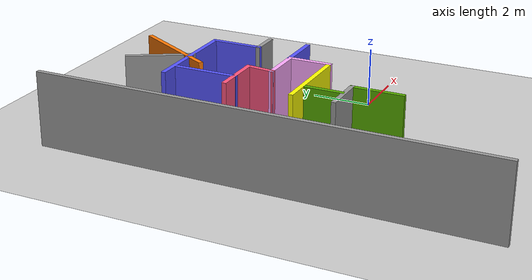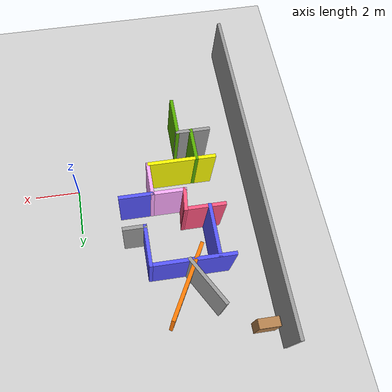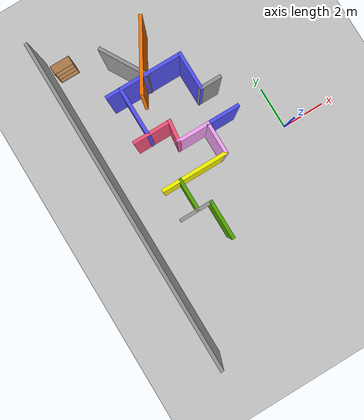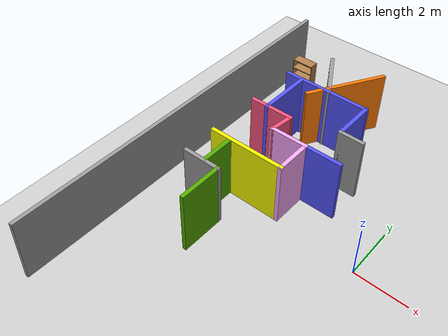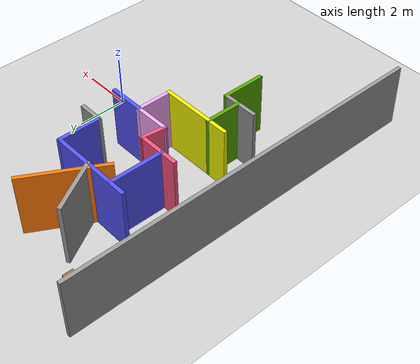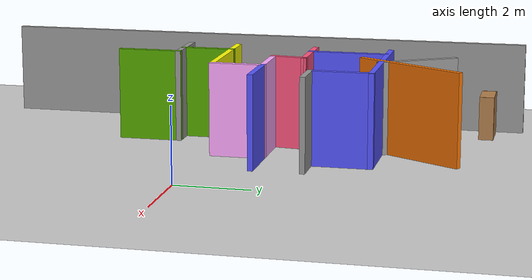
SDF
<sdf version="1.6">
 <world name="default">
  <model name="ground_plane">
   <static>1</static>
   <link name="link">
    <collision name="collision">
     <geometry><plane><normal>0 0 1</normal><size>100 100</size></plane></geometry>
     <surface><friction><ode><mu>100</mu><mu2>50</mu2></ode></friction></surface>
    </collision>
    <visual name="visual">
     <cast_shadows>0</cast_shadows>
     <geometry><plane><normal>0 0 1</normal><size>100 100</size></plane></geometry>
     <material>
      <script><uri>file://media/materials/scripts/gazebo.material</uri><name>Gazebo/Grey</name></script>
     </material>
    </visual>
   </link>
  </model>
  <model name="try_example">
   <link name="Wall_1">
    <pose>-5.97854 0.156676 0 0 -0 1.5708</pose>
    <visual name="Wall_1_Visual">
     <pose>0 0 1.25 0 -0 0</pose>
     <geometry><box><size>14.9191 0.15 2.5</size></box></geometry>
     <material>
      <script><uri>file://media/materials/scripts/gazebo.material</uri><name>Gazebo/Grey</name></script>
      <ambient>0 0 0 1</ambient>
      <diffuse>0.7 0.7 0.7 1</diffuse>
      <specular>0.01 0.01 0.01 1</specular>
      <emissive>0 0 0 1</emissive>
     </material>
    </visual>
    <collision name="Wall_1_Collision">
     <pose>0 0 1.25 0 -0 0</pose>
     <geometry><box><size>14.9191 0.15 2.5</size></box></geometry>
     <surface>
      <friction>
       <ode><mu>1</mu><mu2>1</mu2><fdir1>0 0 0</fdir1><slip1>0</slip1><slip2>0</slip2></ode>
       <torsional>
        <coefficient>1</coefficient>
        <patch_radius>0</patch_radius>
        <surface_radius>0</surface_radius>
        <use_patch_radius>1</use_patch_radius>
        <ode><slip>0</slip></ode>
       </torsional>
      </friction>
      <bounce><restitution_coefficient>0</restitution_coefficient><threshold>1e+06</threshold></bounce>
      <contact>
       <collide_without_contact>0</collide_without_contact>
       <collide_without_contact_bitmask>1</collide_without_contact_bitmask>
       <collide_bitmask>1</collide_bitmask>
       <ode>
        <soft_cfm>0</soft_cfm>
        <soft_erp>0.2</soft_erp>
        <kp>1e+13</kp>
        <kd>1</kd>
        <max_vel>0.01</max_vel>
        <min_depth>0</min_depth>
       </ode>
       <bullet>
        <split_impulse>1</split_impulse>
        <split_impulse_penetration_threshold>-0.01</split_impulse_penetration_threshold>
        <soft_cfm>0</soft_cfm>
        <soft_erp>0.2</soft_erp>
        <kp>1e+13</kp>
        <kd>1</kd>
       </bullet>
      </contact>
     </surface>
    </collision>
   </link>
   <link name="Wall_26">
    <pose>-2.96058 -2.37202 0 0 -0 1.5708</pose>
    <visual name="Wall_26_Visual">
     <pose>0 0 1.25 0 -0 0</pose>
     <geometry><box><size>1.75 0.15 2.5</size></box></geometry>
     <material>
      <script><uri>file://media/materials/scripts/gazebo.material</uri><name>Gazebo/Grey</name></script>
      <ambient>0.333333 0.666667 0 1</ambient>
      <diffuse>0.7 0.7 0.7 1</diffuse>
      <specular>0.01 0.01 0.01 1</specular>
      <emissive>0 0 0 1</emissive>
     </material>
    </visual>
    <collision name="Wall_26_Collision">
     <pose>0 0 1.25 0 -0 0</pose>
     <geometry><box><size>1.75 0.15 2.5</size></box></geometry>
     <surface>
      <friction>
       <ode><mu>1</mu><mu2>1</mu2><fdir1>0 0 0</fdir1><slip1>0</slip1><slip2>0</slip2></ode>
       <torsional>
        <coefficient>1</coefficient>
        <patch_radius>0</patch_radius>
        <surface_radius>0</surface_radius>
        <use_patch_radius>1</use_patch_radius>
        <ode><slip>0</slip></ode>
       </torsional>
      </friction>
      <bounce><restitution_coefficient>0</restitution_coefficient><threshold>1e+06</threshold></bounce>
      <contact>
       <collide_without_contact>0</collide_without_contact>
       <collide_without_contact_bitmask>1</collide_without_contact_bitmask>
       <collide_bitmask>1</collide_bitmask>
       <ode>
        <soft_cfm>0</soft_cfm>
        <soft_erp>0.2</soft_erp>
        <kp>1e+13</kp>
        <kd>1</kd>
        <max_vel>0.01</max_vel>
        <min_depth>0</min_depth>
       </ode>
       <bullet>
        <split_impulse>1</split_impulse>
        <split_impulse_penetration_threshold>-0.01</split_impulse_penetration_threshold>
        <soft_cfm>0</soft_cfm>
        <soft_erp>0.2</soft_erp>
        <kp>1e+13</kp>
        <kd>1</kd>
       </bullet>
      </contact>
     </surface>
    </collision>
   </link>
   <link name="Wall_27">
    <pose>-3.63558 -1.57202 0 0 -0 3.14159</pose>
    <visual name="Wall_27_Visual">
     <pose>0 0 1.25 0 -0 0</pose>
     <geometry><box><size>1.5 0.15 2.5</size></box></geometry>
     <material>
      <script><uri>file://media/materials/scripts/gazebo.material</uri><name>Gazebo/Grey</name></script>
      <ambient>1 1 1 1</ambient>
      <diffuse>0.7 0.7 0.7 1</diffuse>
      <specular>0.01 0.01 0.01 1</specular>
      <emissive>0 0 0 1</emissive>
     </material>
    </visual>
    <collision name="Wall_27_Collision">
     <pose>0 0 1.25 0 -0 0</pose>
     <geometry><box><size>1.5 0.15 2.5</size></box></geometry>
     <surface>
      <friction>
       <ode><mu>1</mu><mu2>1</mu2><fdir1>0 0 0</fdir1><slip1>0</slip1><slip2>0</slip2></ode>
       <torsional>
        <coefficient>1</coefficient>
        <patch_radius>0</patch_radius>
        <surface_radius>0</surface_radius>
        <use_patch_radius>1</use_patch_radius>
        <ode><slip>0</slip></ode>
       </torsional>
      </friction>
      <bounce><restitution_coefficient>0</restitution_coefficient><threshold>1e+06</threshold></bounce>
      <contact>
       <collide_without_contact>0</collide_without_contact>
       <collide_without_contact_bitmask>1</collide_without_contact_bitmask>
       <collide_bitmask>1</collide_bitmask>
       <ode>
        <soft_cfm>0</soft_cfm>
        <soft_erp>0.2</soft_erp>
        <kp>1e+13</kp>
        <kd>1</kd>
        <max_vel>0.01</max_vel>
        <min_depth>0</min_depth>
       </ode>
       <bullet>
        <split_impulse>1</split_impulse>
        <split_impulse_penetration_threshold>-0.01</split_impulse_penetration_threshold>
        <soft_cfm>0</soft_cfm>
        <soft_erp>0.2</soft_erp>
        <kp>1e+13</kp>
        <kd>1</kd>
       </bullet>
      </contact>
     </surface>
    </collision>
   </link>
   <link name="Wall_28">
    <pose>-3.55189 -0.897016 0 0 -0 1.5708</pose>
    <visual name="Wall_28_Visual">
     <pose>0 0 1.25 0 -0 0</pose>
     <geometry><box><size>1.5 0.15 2.5</size></box></geometry>
     <material>
      <script><uri>file://media/materials/scripts/gazebo.material</uri><name>Gazebo/Grey</name></script>
      <ambient>0.333333 0.666667 0 1</ambient>
      <diffuse>0.7 0.7 0.7 1</diffuse>
      <specular>0.01 0.01 0.01 1</specular>
      <emissive>0 0 0 1</emissive>
     </material>
    </visual>
    <collision name="Wall_28_Collision">
     <pose>0 0 1.25 0 -0 0</pose>
     <geometry><box><size>1.5 0.15 2.5</size></box></geometry>
     <surface>
      <friction>
       <ode><mu>1</mu><mu2>1</mu2><fdir1>0 0 0</fdir1><slip1>0</slip1><slip2>0</slip2></ode>
       <torsional>
        <coefficient>1</coefficient>
        <patch_radius>0</patch_radius>
        <surface_radius>0</surface_radius>
        <use_patch_radius>1</use_patch_radius>
        <ode><slip>0</slip></ode>
       </torsional>
      </friction>
      <bounce><restitution_coefficient>0</restitution_coefficient><threshold>1e+06</threshold></bounce>
      <contact>
       <collide_without_contact>0</collide_without_contact>
       <collide_without_contact_bitmask>1</collide_without_contact_bitmask>
       <collide_bitmask>1</collide_bitmask>
       <ode>
        <soft_cfm>0</soft_cfm>
        <soft_erp>0.2</soft_erp>
        <kp>1e+13</kp>
        <kd>1</kd>
        <max_vel>0.01</max_vel>
        <min_depth>0</min_depth>
       </ode>
       <bullet>
        <split_impulse>1</split_impulse>
        <split_impulse_penetration_threshold>-0.01</split_impulse_penetration_threshold>
        <soft_cfm>0</soft_cfm>
        <soft_erp>0.2</soft_erp>
        <kp>1e+13</kp>
        <kd>1</kd>
       </bullet>
      </contact>
     </surface>
    </collision>
   </link>
   <link name="Wall_29">
    <pose>-2.88558 -0.222018 0 0 -0 0</pose>
    <visual name="Wall_29_Visual">
     <pose>0 0 1.25 0 -0 0</pose>
     <geometry><box><size>3 0.15 2.5</size></box></geometry>
     <material>
      <script><uri>file://media/materials/scripts/gazebo.material</uri><name>Gazebo/Grey</name></script>
      <ambient>1 1 0 1</ambient>
      <diffuse>0.7 0.7 0.7 1</diffuse>
      <specular>0.01 0.01 0.01 1</specular>
      <emissive>0 0 0 1</emissive>
     </material>
    </visual>
    <collision name="Wall_29_Collision">
     <pose>0 0 1.25 0 -0 0</pose>
     <geometry><box><size>3 0.15 2.5</size></box></geometry>
     <surface>
      <friction>
       <ode><mu>1</mu><mu2>1</mu2><fdir1>0 0 0</fdir1><slip1>0</slip1><slip2>0</slip2></ode>
       <torsional>
        <coefficient>1</coefficient>
        <patch_radius>0</patch_radius>
        <surface_radius>0</surface_radius>
        <use_patch_radius>1</use_patch_radius>
        <ode><slip>0</slip></ode>
       </torsional>
      </friction>
      <bounce><restitution_coefficient>0</restitution_coefficient><threshold>1e+06</threshold></bounce>
      <contact>
       <collide_without_contact>0</collide_without_contact>
       <collide_without_contact_bitmask>1</collide_without_contact_bitmask>
       <collide_bitmask>1</collide_bitmask>
       <ode>
        <soft_cfm>0</soft_cfm>
        <soft_erp>0.2</soft_erp>
        <kp>1e+13</kp>
        <kd>1</kd>
        <max_vel>0.01</max_vel>
        <min_depth>0</min_depth>
       </ode>
       <bullet>
        <split_impulse>1</split_impulse>
        <split_impulse_penetration_threshold>-0.01</split_impulse_penetration_threshold>
        <soft_cfm>0</soft_cfm>
        <soft_erp>0.2</soft_erp>
        <kp>1e+13</kp>
        <kd>1</kd>
       </bullet>
      </contact>
     </surface>
    </collision>
   </link>
   <link name="Wall_30">
    <pose>-1.46058 0.452981 0 0 -0 1.5708</pose>
    <visual name="Wall_30_Visual">
     <pose>0 0 1.25 0 -0 0</pose>
     <geometry><box><size>1.5 0.15 2.5</size></box></geometry>
     <material>
      <script><uri>file://media/materials/scripts/gazebo.material</uri><name>Gazebo/Grey</name></script>
      <ambient>1 0.666667 1 1</ambient>
      <diffuse>0.7 0.7 0.7 1</diffuse>
      <specular>0.01 0.01 0.01 1</specular>
      <emissive>0 0 0 1</emissive>
     </material>
    </visual>
    <collision name="Wall_30_Collision">
     <pose>0 0 1.25 0 -0 0</pose>
     <geometry><box><size>1.5 0.15 2.5</size></box></geometry>
     <surface>
      <friction>
       <ode><mu>1</mu><mu2>1</mu2><fdir1>0 0 0</fdir1><slip1>0</slip1><slip2>0</slip2></ode>
       <torsional>
        <coefficient>1</coefficient>
        <patch_radius>0</patch_radius>
        <surface_radius>0</surface_radius>
        <use_patch_radius>1</use_patch_radius>
        <ode><slip>0</slip></ode>
       </torsional>
      </friction>
      <bounce><restitution_coefficient>0</restitution_coefficient><threshold>1e+06</threshold></bounce>
      <contact>
       <collide_without_contact>0</collide_without_contact>
       <collide_without_contact_bitmask>1</collide_without_contact_bitmask>
       <collide_bitmask>1</collide_bitmask>
       <ode>
        <soft_cfm>0</soft_cfm>
        <soft_erp>0.2</soft_erp>
        <kp>1e+13</kp>
        <kd>1</kd>
        <max_vel>0.01</max_vel>
        <min_depth>0</min_depth>
       </ode>
       <bullet>
        <split_impulse>1</split_impulse>
        <split_impulse_penetration_threshold>-0.01</split_impulse_penetration_threshold>
        <soft_cfm>0</soft_cfm>
        <soft_erp>0.2</soft_erp>
        <kp>1e+13</kp>
        <kd>1</kd>
       </bullet>
      </contact>
     </surface>
    </collision>
   </link>
   <link name="Wall_31">
    <pose>-2.13558 1.12798 0 0 -0 3.14159</pose>
    <visual name="Wall_31_Visual">
     <pose>0 0 1.25 0 -0 0</pose>
     <geometry><box><size>1.5 0.15 2.5</size></box></geometry>
     <material>
      <script><uri>file://media/materials/scripts/gazebo.material</uri><name>Gazebo/Grey</name></script>
      <ambient>1 0.666667 1 1</ambient>
      <diffuse>0.7 0.7 0.7 1</diffuse>
      <specular>0.01 0.01 0.01 1</specular>
      <emissive>0 0 0 1</emissive>
     </material>
    </visual>
    <collision name="Wall_31_Collision">
     <pose>0 0 1.25 0 -0 0</pose>
     <geometry><box><size>1.5 0.15 2.5</size></box></geometry>
     <surface>
      <friction>
       <ode><mu>1</mu><mu2>1</mu2><fdir1>0 0 0</fdir1><slip1>0</slip1><slip2>0</slip2></ode>
       <torsional>
        <coefficient>1</coefficient>
        <patch_radius>0</patch_radius>
        <surface_radius>0</surface_radius>
        <use_patch_radius>1</use_patch_radius>
        <ode><slip>0</slip></ode>
       </torsional>
      </friction>
      <bounce><restitution_coefficient>0</restitution_coefficient><threshold>1e+06</threshold></bounce>
      <contact>
       <collide_without_contact>0</collide_without_contact>
       <collide_without_contact_bitmask>1</collide_without_contact_bitmask>
       <collide_bitmask>1</collide_bitmask>
       <ode>
        <soft_cfm>0</soft_cfm>
        <soft_erp>0.2</soft_erp>
        <kp>1e+13</kp>
        <kd>1</kd>
        <max_vel>0.01</max_vel>
        <min_depth>0</min_depth>
       </ode>
       <bullet>
        <split_impulse>1</split_impulse>
        <split_impulse_penetration_threshold>-0.01</split_impulse_penetration_threshold>
        <soft_cfm>0</soft_cfm>
        <soft_erp>0.2</soft_erp>
        <kp>1e+13</kp>
        <kd>1</kd>
       </bullet>
      </contact>
     </surface>
    </collision>
   </link>
   <link name="Wall_34">
    <pose>-0.78558 1.12798 0 0 -0 0</pose>
    <visual name="Wall_34_Visual">
     <pose>0 0 1.25 0 -0 0</pose>
     <geometry><box><size>1.5 0.15 2.5</size></box></geometry>
     <material>
      <script><uri>file://media/materials/scripts/gazebo.material</uri><name>Gazebo/Grey</name></script>
      <ambient>0.333333 0.333333 1 1</ambient>
      <diffuse>0.7 0.7 0.7 1</diffuse>
      <specular>0.01 0.01 0.01 1</specular>
      <emissive>0 0 0 1</emissive>
     </material>
    </visual>
    <collision name="Wall_34_Collision">
     <pose>0 0 1.25 0 -0 0</pose>
     <geometry><box><size>1.5 0.15 2.5</size></box></geometry>
     <surface>
      <friction>
       <ode><mu>1</mu><mu2>1</mu2><fdir1>0 0 0</fdir1><slip1>0</slip1><slip2>0</slip2></ode>
       <torsional>
        <coefficient>1</coefficient>
        <patch_radius>0</patch_radius>
        <surface_radius>0</surface_radius>
        <use_patch_radius>1</use_patch_radius>
        <ode><slip>0</slip></ode>
       </torsional>
      </friction>
      <bounce><restitution_coefficient>0</restitution_coefficient><threshold>1e+06</threshold></bounce>
      <contact>
       <collide_without_contact>0</collide_without_contact>
       <collide_without_contact_bitmask>1</collide_without_contact_bitmask>
       <collide_bitmask>1</collide_bitmask>
       <ode>
        <soft_cfm>0</soft_cfm>
        <soft_erp>0.2</soft_erp>
        <kp>1e+13</kp>
        <kd>1</kd>
        <max_vel>0.01</max_vel>
        <min_depth>0</min_depth>
       </ode>
       <bullet>
        <split_impulse>1</split_impulse>
        <split_impulse_penetration_threshold>-0.01</split_impulse_penetration_threshold>
        <soft_cfm>0</soft_cfm>
        <soft_erp>0.2</soft_erp>
        <kp>1e+13</kp>
        <kd>1</kd>
       </bullet>
      </contact>
     </surface>
    </collision>
   </link>
   <link name="Wall_36">
    <pose>-0.53558 2.47798 0 0 -0 3.14159</pose>
    <visual name="Wall_36_Visual">
     <pose>0 0 1.25 0 -0 0</pose>
     <geometry><box><size>1 0.15 2.5</size></box></geometry>
     <material>
      <script><uri>file://media/materials/scripts/gazebo.material</uri><name>Gazebo/Grey</name></script>
      <ambient>1 1 1 1</ambient>
      <diffuse>0.7 0.7 0.7 1</diffuse>
      <specular>0.01 0.01 0.01 1</specular>
      <emissive>0 0 0 1</emissive>
     </material>
    </visual>
    <collision name="Wall_36_Collision">
     <pose>0 0 1.25 0 -0 0</pose>
     <geometry><box><size>1 0.15 2.5</size></box></geometry>
     <surface>
      <friction>
       <ode><mu>1</mu><mu2>1</mu2><fdir1>0 0 0</fdir1><slip1>0</slip1><slip2>0</slip2></ode>
       <torsional>
        <coefficient>1</coefficient>
        <patch_radius>0</patch_radius>
        <surface_radius>0</surface_radius>
        <use_patch_radius>1</use_patch_radius>
        <ode><slip>0</slip></ode>
       </torsional>
      </friction>
      <bounce><restitution_coefficient>0</restitution_coefficient><threshold>1e+06</threshold></bounce>
      <contact>
       <collide_without_contact>0</collide_without_contact>
       <collide_without_contact_bitmask>1</collide_without_contact_bitmask>
       <collide_bitmask>1</collide_bitmask>
       <ode>
        <soft_cfm>0</soft_cfm>
        <soft_erp>0.2</soft_erp>
        <kp>1e+13</kp>
        <kd>1</kd>
        <max_vel>0.01</max_vel>
        <min_depth>0</min_depth>
       </ode>
       <bullet>
        <split_impulse>1</split_impulse>
        <split_impulse_penetration_threshold>-0.01</split_impulse_penetration_threshold>
        <soft_cfm>0</soft_cfm>
        <soft_erp>0.2</soft_erp>
        <kp>1e+13</kp>
        <kd>1</kd>
       </bullet>
      </contact>
     </surface>
    </collision>
   </link>
   <link name="Wall_37">
    <pose>-0.96058 3.27798 0 0 -0 1.5708</pose>
    <visual name="Wall_37_Visual">
     <pose>0 0 1.25 0 -0 0</pose>
     <geometry><box><size>1.75 0.15 2.5</size></box></geometry>
     <material>
      <script><uri>file://media/materials/scripts/gazebo.material</uri><name>Gazebo/Grey</name></script>
      <ambient>0.333333 0.333333 1 1</ambient>
      <diffuse>0.7 0.7 0.7 1</diffuse>
      <specular>0.01 0.01 0.01 1</specular>
      <emissive>0 0 0 1</emissive>
     </material>
    </visual>
    <collision name="Wall_37_Collision">
     <pose>0 0 1.25 0 -0 0</pose>
     <geometry><box><size>1.75 0.15 2.5</size></box></geometry>
     <surface>
      <friction>
       <ode><mu>1</mu><mu2>1</mu2><fdir1>0 0 0</fdir1><slip1>0</slip1><slip2>0</slip2></ode>
       <torsional>
        <coefficient>1</coefficient>
        <patch_radius>0</patch_radius>
        <surface_radius>0</surface_radius>
        <use_patch_radius>1</use_patch_radius>
        <ode><slip>0</slip></ode>
       </torsional>
      </friction>
      <bounce><restitution_coefficient>0</restitution_coefficient><threshold>1e+06</threshold></bounce>
      <contact>
       <collide_without_contact>0</collide_without_contact>
       <collide_without_contact_bitmask>1</collide_without_contact_bitmask>
       <collide_bitmask>1</collide_bitmask>
       <ode>
        <soft_cfm>0</soft_cfm>
        <soft_erp>0.2</soft_erp>
        <kp>1e+13</kp>
        <kd>1</kd>
        <max_vel>0.01</max_vel>
        <min_depth>0</min_depth>
       </ode>
       <bullet>
        <split_impulse>1</split_impulse>
        <split_impulse_penetration_threshold>-0.01</split_impulse_penetration_threshold>
        <soft_cfm>0</soft_cfm>
        <soft_erp>0.2</soft_erp>
        <kp>1e+13</kp>
        <kd>1</kd>
       </bullet>
      </contact>
     </surface>
    </collision>
   </link>
   <link name="Wall_38">
    <pose>-2.63558 4.07798 0 0 -0 3.14159</pose>
    <visual name="Wall_38_Visual">
     <pose>0 0 1.25 0 -0 0</pose>
     <geometry><box><size>3.5 0.15 2.5</size></box></geometry>
     <material>
      <script><uri>file://media/materials/scripts/gazebo.material</uri><name>Gazebo/Grey</name></script>
      <ambient>0.333333 0.333333 1 1</ambient>
      <diffuse>0.7 0.7 0.7 1</diffuse>
      <specular>0.01 0.01 0.01 1</specular>
      <emissive>0 0 0 1</emissive>
     </material>
    </visual>
    <collision name="Wall_38_Collision">
     <pose>0 0 1.25 0 -0 0</pose>
     <geometry><box><size>3.5 0.15 2.5</size></box></geometry>
     <surface>
      <friction>
       <ode><mu>1</mu><mu2>1</mu2><fdir1>0 0 0</fdir1><slip1>0</slip1><slip2>0</slip2></ode>
       <torsional>
        <coefficient>1</coefficient>
        <patch_radius>0</patch_radius>
        <surface_radius>0</surface_radius>
        <use_patch_radius>1</use_patch_radius>
        <ode><slip>0</slip></ode>
       </torsional>
      </friction>
      <bounce><restitution_coefficient>0</restitution_coefficient><threshold>1e+06</threshold></bounce>
      <contact>
       <collide_without_contact>0</collide_without_contact>
       <collide_without_contact_bitmask>1</collide_without_contact_bitmask>
       <collide_bitmask>1</collide_bitmask>
       <ode>
        <soft_cfm>0</soft_cfm>
        <soft_erp>0.2</soft_erp>
        <kp>1e+13</kp>
        <kd>1</kd>
        <max_vel>0.01</max_vel>
        <min_depth>0</min_depth>
       </ode>
       <bullet>
        <split_impulse>1</split_impulse>
        <split_impulse_penetration_threshold>-0.01</split_impulse_penetration_threshold>
        <soft_cfm>0</soft_cfm>
        <soft_erp>0.2</soft_erp>
        <kp>1e+13</kp>
        <kd>1</kd>
       </bullet>
      </contact>
     </surface>
    </collision>
   </link>
   <link name="Wall_39">
    <pose>-3.70247 3.01884 0 0 0 -1.5708</pose>
    <visual name="Wall_39_Visual">
     <pose>0 0 1.25 0 -0 0</pose>
     <geometry><box><size>2.25 0.15 2.5</size></box></geometry>
     <material>
      <script><uri>file://media/materials/scripts/gazebo.material</uri><name>Gazebo/Grey</name></script>
      <ambient>0.333333 0.333333 1 1</ambient>
      <diffuse>0.7 0.7 0.7 1</diffuse>
      <specular>0.01 0.01 0.01 1</specular>
      <emissive>0 0 0 1</emissive>
     </material>
    </visual>
    <collision name="Wall_39_Collision">
     <pose>0 0 1.25 0 -0 0</pose>
     <geometry><box><size>2.25 0.15 2.5</size></box></geometry>
     <surface>
      <friction>
       <ode><mu>1</mu><mu2>1</mu2><fdir1>0 0 0</fdir1><slip1>0</slip1><slip2>0</slip2></ode>
       <torsional>
        <coefficient>1</coefficient>
        <patch_radius>0</patch_radius>
        <surface_radius>0</surface_radius>
        <use_patch_radius>1</use_patch_radius>
        <ode><slip>0</slip></ode>
       </torsional>
      </friction>
      <bounce><restitution_coefficient>0</restitution_coefficient><threshold>1e+06</threshold></bounce>
      <contact>
       <collide_without_contact>0</collide_without_contact>
       <collide_without_contact_bitmask>1</collide_without_contact_bitmask>
       <collide_bitmask>1</collide_bitmask>
       <ode>
        <soft_cfm>0</soft_cfm>
        <soft_erp>0.2</soft_erp>
        <kp>1e+13</kp>
        <kd>1</kd>
        <max_vel>0.01</max_vel>
        <min_depth>0</min_depth>
       </ode>
       <bullet>
        <split_impulse>1</split_impulse>
        <split_impulse_penetration_threshold>-0.01</split_impulse_penetration_threshold>
        <soft_cfm>0</soft_cfm>
        <soft_erp>0.2</soft_erp>
        <kp>1e+13</kp>
        <kd>1</kd>
       </bullet>
      </contact>
     </surface>
    </collision>
   </link>
   <link name="Wall_40">
    <pose>-3.51058 1.97798 0 0 -0 0</pose>
    <visual name="Wall_40_Visual">
     <pose>0 0 1.25 0 -0 0</pose>
     <geometry><box><size>1.75 0.15 2.5</size></box></geometry>
     <material>
      <script><uri>file://media/materials/scripts/gazebo.material</uri><name>Gazebo/Grey</name></script>
      <ambient>1 0.333333 0.498039 1</ambient>
      <diffuse>0.7 0.7 0.7 1</diffuse>
      <specular>0.01 0.01 0.01 1</specular>
      <emissive>0 0 0 1</emissive>
     </material>
    </visual>
    <collision name="Wall_40_Collision">
     <pose>0 0 1.25 0 -0 0</pose>
     <geometry><box><size>1.75 0.15 2.5</size></box></geometry>
     <surface>
      <friction>
       <ode><mu>1</mu><mu2>1</mu2><fdir1>0 0 0</fdir1><slip1>0</slip1><slip2>0</slip2></ode>
       <torsional>
        <coefficient>1</coefficient>
        <patch_radius>0</patch_radius>
        <surface_radius>0</surface_radius>
        <use_patch_radius>1</use_patch_radius>
        <ode><slip>0</slip></ode>
       </torsional>
      </friction>
      <bounce><restitution_coefficient>0</restitution_coefficient><threshold>1e+06</threshold></bounce>
      <contact>
       <collide_without_contact>0</collide_without_contact>
       <collide_without_contact_bitmask>1</collide_without_contact_bitmask>
       <collide_bitmask>1</collide_bitmask>
       <ode>
        <soft_cfm>0</soft_cfm>
        <soft_erp>0.2</soft_erp>
        <kp>1e+13</kp>
        <kd>1</kd>
        <max_vel>0.01</max_vel>
        <min_depth>0</min_depth>
       </ode>
       <bullet>
        <split_impulse>1</split_impulse>
        <split_impulse_penetration_threshold>-0.01</split_impulse_penetration_threshold>
        <soft_cfm>0</soft_cfm>
        <soft_erp>0.2</soft_erp>
        <kp>1e+13</kp>
        <kd>1</kd>
       </bullet>
      </contact>
     </surface>
    </collision>
   </link>
   <link name="Wall_53">
    <pose>-2.76058 1.55298 0 0 0 -1.6879</pose>
    <visual name="Wall_53_Visual">
     <pose>0 0 1.25 0 -0 0</pose>
     <geometry><box><size>1.00586 0.15 2.5</size></box></geometry>
     <material>
      <script><uri>file://media/materials/scripts/gazebo.material</uri><name>Gazebo/Grey</name></script>
      <ambient>1 0.333333 0.498039 1</ambient>
      <diffuse>0.7 0.7 0.7 1</diffuse>
      <specular>0.01 0.01 0.01 1</specular>
      <emissive>0 0 0 1</emissive>
     </material>
    </visual>
    <collision name="Wall_53_Collision">
     <pose>0 0 1.25 0 -0 0</pose>
     <geometry><box><size>1.00586 0.15 2.5</size></box></geometry>
     <surface>
      <friction>
       <ode><mu>1</mu><mu2>1</mu2><fdir1>0 0 0</fdir1><slip1>0</slip1><slip2>0</slip2></ode>
       <torsional>
        <coefficient>1</coefficient>
        <patch_radius>0</patch_radius>
        <surface_radius>0</surface_radius>
        <use_patch_radius>1</use_patch_radius>
        <ode><slip>0</slip></ode>
       </torsional>
      </friction>
      <bounce><restitution_coefficient>0</restitution_coefficient><threshold>1e+06</threshold></bounce>
      <contact>
       <collide_without_contact>0</collide_without_contact>
       <collide_without_contact_bitmask>1</collide_without_contact_bitmask>
       <collide_bitmask>1</collide_bitmask>
       <ode>
        <soft_cfm>0</soft_cfm>
        <soft_erp>0.2</soft_erp>
        <kp>1e+13</kp>
        <kd>1</kd>
        <max_vel>0.01</max_vel>
        <min_depth>0</min_depth>
       </ode>
       <bullet>
        <split_impulse>1</split_impulse>
        <split_impulse_penetration_threshold>-0.01</split_impulse_penetration_threshold>
        <soft_cfm>0</soft_cfm>
        <soft_erp>0.2</soft_erp>
        <kp>1e+13</kp>
        <kd>1</kd>
       </bullet>
      </contact>
     </surface>
    </collision>
   </link>
   <link name="Wall_67">
    <pose>-3.0359 4.97057 0 0 -0 2.0944</pose>
    <visual name="Wall_67_Visual">
     <pose>0 0 1.25 0 -0 0</pose>
     <geometry><box><size>2.25 0.15 2.5</size></box></geometry>
     <material>
      <script><uri>file://media/materials/scripts/gazebo.material</uri><name>Gazebo/Grey</name></script>
      <ambient>1 1 1 1</ambient>
      <diffuse>0.7 0.7 0.7 1</diffuse>
      <specular>0.01 0.01 0.01 1</specular>
      <emissive>0 0 0 1</emissive>
     </material>
    </visual>
    <collision name="Wall_67_Collision">
     <pose>0 0 1.25 0 -0 0</pose>
     <geometry><box><size>2.25 0.15 2.5</size></box></geometry>
     <surface>
      <friction>
       <ode><mu>1</mu><mu2>1</mu2><fdir1>0 0 0</fdir1><slip1>0</slip1><slip2>0</slip2></ode>
       <torsional>
        <coefficient>1</coefficient>
        <patch_radius>0</patch_radius>
        <surface_radius>0</surface_radius>
        <use_patch_radius>1</use_patch_radius>
        <ode><slip>0</slip></ode>
       </torsional>
      </friction>
      <bounce><restitution_coefficient>0</restitution_coefficient><threshold>1e+06</threshold></bounce>
      <contact>
       <collide_without_contact>0</collide_without_contact>
       <collide_without_contact_bitmask>1</collide_without_contact_bitmask>
       <collide_bitmask>1</collide_bitmask>
       <ode>
        <soft_cfm>0</soft_cfm>
        <soft_erp>0.2</soft_erp>
        <kp>1e+13</kp>
        <kd>1</kd>
        <max_vel>0.01</max_vel>
        <min_depth>0</min_depth>
       </ode>
       <bullet>
        <split_impulse>1</split_impulse>
        <split_impulse_penetration_threshold>-0.01</split_impulse_penetration_threshold>
        <soft_cfm>0</soft_cfm>
        <soft_erp>0.2</soft_erp>
        <kp>1e+13</kp>
        <kd>1</kd>
       </bullet>
      </contact>
     </surface>
    </collision>
   </link>
   <link name="Wall_69">
    <pose>-2.29021 4.86314 0 0 -0 1.0472</pose>
    <visual name="Wall_69_Visual">
     <pose>0 0 1.25 0 -0 0</pose>
     <geometry><box><size>3.25 0.15 2.5</size></box></geometry>
     <material>
      <script><uri>file://media/materials/scripts/gazebo.material</uri><name>Gazebo/Grey</name></script>
      <ambient>0.996078 0.47451 0.0196078 1</ambient>
      <diffuse>0.7 0.7 0.7 1</diffuse>
      <specular>0.01 0.01 0.01 1</specular>
      <emissive>0 0 0 1</emissive>
     </material>
    </visual>
    <collision name="Wall_69_Collision">
     <pose>0 0 1.25 0 -0 0</pose>
     <geometry><box><size>3.25 0.15 2.5</size></box></geometry>
     <surface>
      <friction>
       <ode><mu>1</mu><mu2>1</mu2><fdir1>0 0 0</fdir1><slip1>0</slip1><slip2>0</slip2></ode>
       <torsional>
        <coefficient>1</coefficient>
        <patch_radius>0</patch_radius>
        <surface_radius>0</surface_radius>
        <use_patch_radius>1</use_patch_radius>
        <ode><slip>0</slip></ode>
       </torsional>
      </friction>
      <bounce><restitution_coefficient>0</restitution_coefficient><threshold>1e+06</threshold></bounce>
      <contact>
       <collide_without_contact>0</collide_without_contact>
       <collide_without_contact_bitmask>1</collide_without_contact_bitmask>
       <collide_bitmask>1</collide_bitmask>
       <ode>
        <soft_cfm>0</soft_cfm>
        <soft_erp>0.2</soft_erp>
        <kp>1e+13</kp>
        <kd>1</kd>
        <max_vel>0.01</max_vel>
        <min_depth>0</min_depth>
       </ode>
       <bullet>
        <split_impulse>1</split_impulse>
        <split_impulse_penetration_threshold>-0.01</split_impulse_penetration_threshold>
        <soft_cfm>0</soft_cfm>
        <soft_erp>0.2</soft_erp>
        <kp>1e+13</kp>
        <kd>1</kd>
       </bullet>
      </contact>
     </surface>
    </collision>
   </link>
   <static>1</static>
   <pose>-1.73418 0.413361 0 0 -0 0</pose>
  </model>
  <model name="bookshelf">
   <static>1</static>
   <link name="link">
    <inertial><mass>1</mass></inertial>
    <collision name="back">
     <pose>0 0.005 0.6 0 -0 0</pose>
     <geometry><box><size>0.9 0.01 1.2</size></box></geometry>
    </collision>
    <visual name="visual1">
     <pose>0 0.005 0.6 0 -0 0</pose>
     <geometry><box><size>0.9 0.01 1.2</size></box></geometry>
     <material>
      <script><uri>file://media/materials/scripts/gazebo.material</uri><name>Gazebo/Wood</name></script>
     </material>
    </visual>
    <collision name="left_side">
     <pose>0.45 -0.195 0.6 0 -0 0</pose>
     <geometry><box><size>0.02 0.4 1.2</size></box></geometry>
    </collision>
    <visual name="visual2">
     <pose>0.45 -0.195 0.6 0 -0 0</pose>
     <geometry><box><size>0.02 0.4 1.2</size></box></geometry>
     <material>
      <script><uri>file://media/materials/scripts/gazebo.material</uri><name>Gazebo/Wood</name></script>
     </material>
    </visual>
    <collision name="right_side">
     <pose>-0.45 -0.195 0.6 0 -0 0</pose>
     <geometry><box><size>0.02 0.4 1.2</size></box></geometry>
    </collision>
    <visual name="visual3">
     <pose>-0.45 -0.195 0.6 0 -0 0</pose>
     <geometry><box><size>0.02 0.4 1.2</size></box></geometry>
     <material>
      <script><uri>file://media/materials/scripts/gazebo.material</uri><name>Gazebo/Wood</name></script>
     </material>
    </visual>
    <collision name="bottom">
     <pose>0 -0.195 0.03 0 -0 0</pose>
     <geometry><box><size>0.88 0.4 0.06</size></box></geometry>
    </collision>
    <visual name="visual4">
     <pose>0 -0.195 0.03 0 -0 0</pose>
     <geometry><box><size>0.88 0.4 0.06</size></box></geometry>
     <material>
      <script><uri>file://media/materials/scripts/gazebo.material</uri><name>Gazebo/Wood</name></script>
     </material>
    </visual>
    <collision name="top">
     <pose>0 -0.195 1.19 0 -0 0</pose>
     <geometry><box><size>0.88 0.4 0.02</size></box></geometry>
    </collision>
    <visual name="visual5">
     <pose>0 -0.195 1.19 0 -0 0</pose>
     <geometry><box><size>0.88 0.4 0.02</size></box></geometry>
     <material>
      <script><uri>file://media/materials/scripts/gazebo.material</uri><name>Gazebo/Wood</name></script>
     </material>
    </visual>
    <collision name="low_shelf">
     <pose>0 -0.195 0.43 0 -0 0</pose>
     <geometry><box><size>0.88 0.4 0.02</size></box></geometry>
    </collision>
    <visual name="visual6">
     <pose>0 -0.195 0.43 0 -0 0</pose>
     <geometry><box><size>0.88 0.4 0.02</size></box></geometry>
     <material>
      <script><uri>file://media/materials/scripts/gazebo.material</uri><name>Gazebo/Wood</name></script>
     </material>
    </visual>
    <collision name="high_shelf">
     <pose>0 -0.195 0.8 0 -0 0</pose>
     <geometry><box><size>0.88 0.4 0.02</size></box></geometry>
    </collision>
    <visual name="visual7">
     <pose>0 -0.195 0.8 0 -0 0</pose>
     <geometry><box><size>0.88 0.4 0.02</size></box></geometry>
     <material>
      <script><uri>file://media/materials/scripts/gazebo.material</uri><name>Gazebo/Wood</name></script>
     </material>
    </visual>
   </link>
   <pose>-7.01584 7.27917 0 0 -0 0</pose>
  </model>
 </world>
</sdf>
